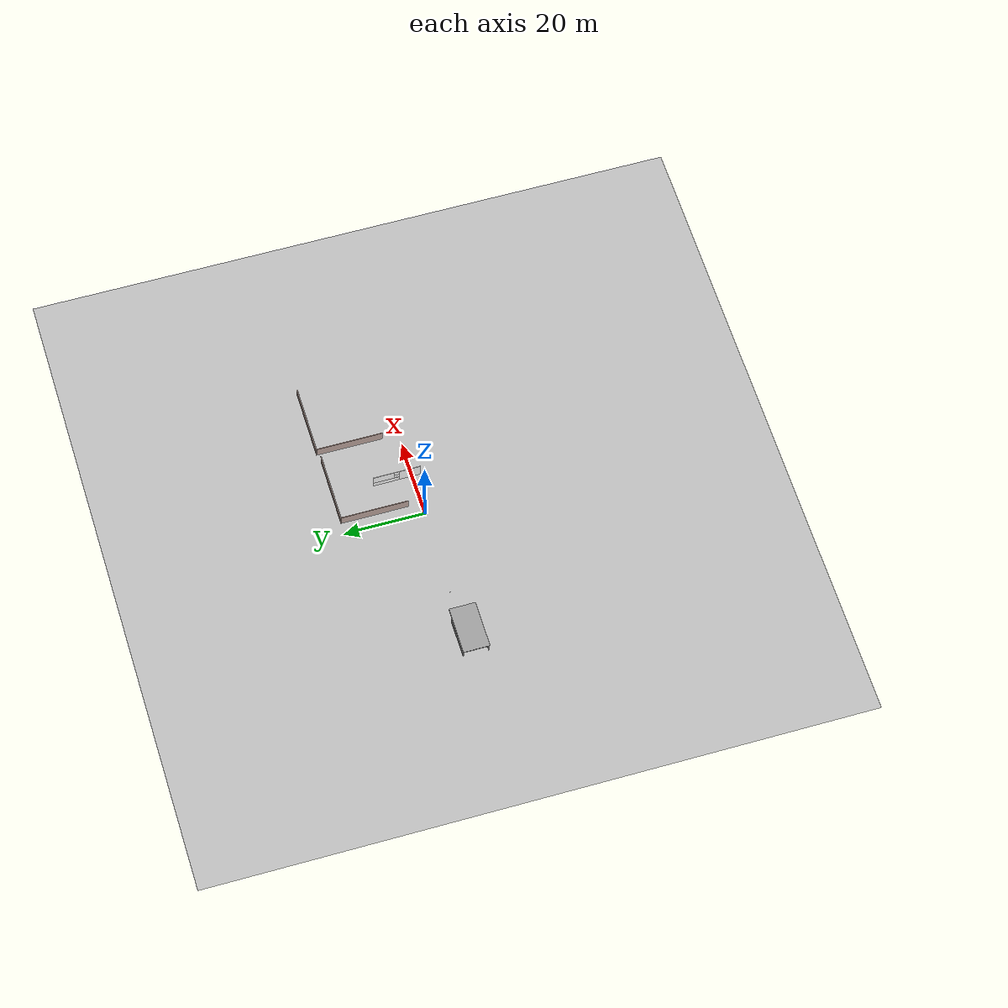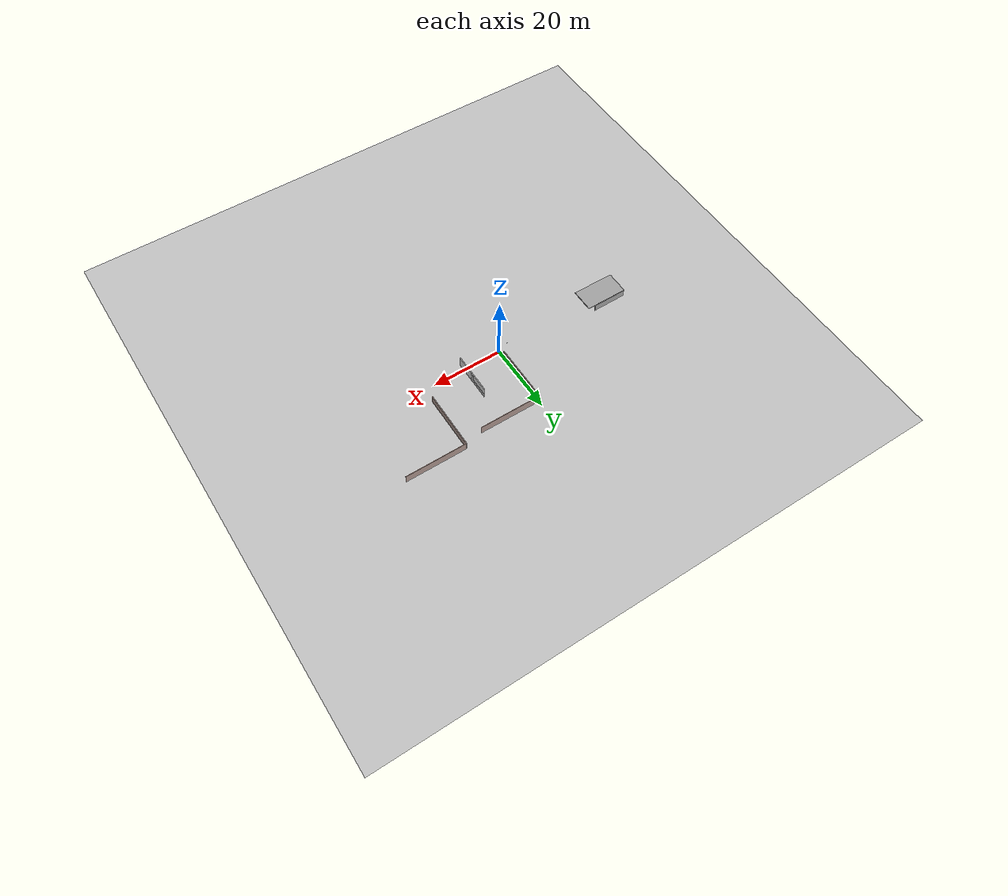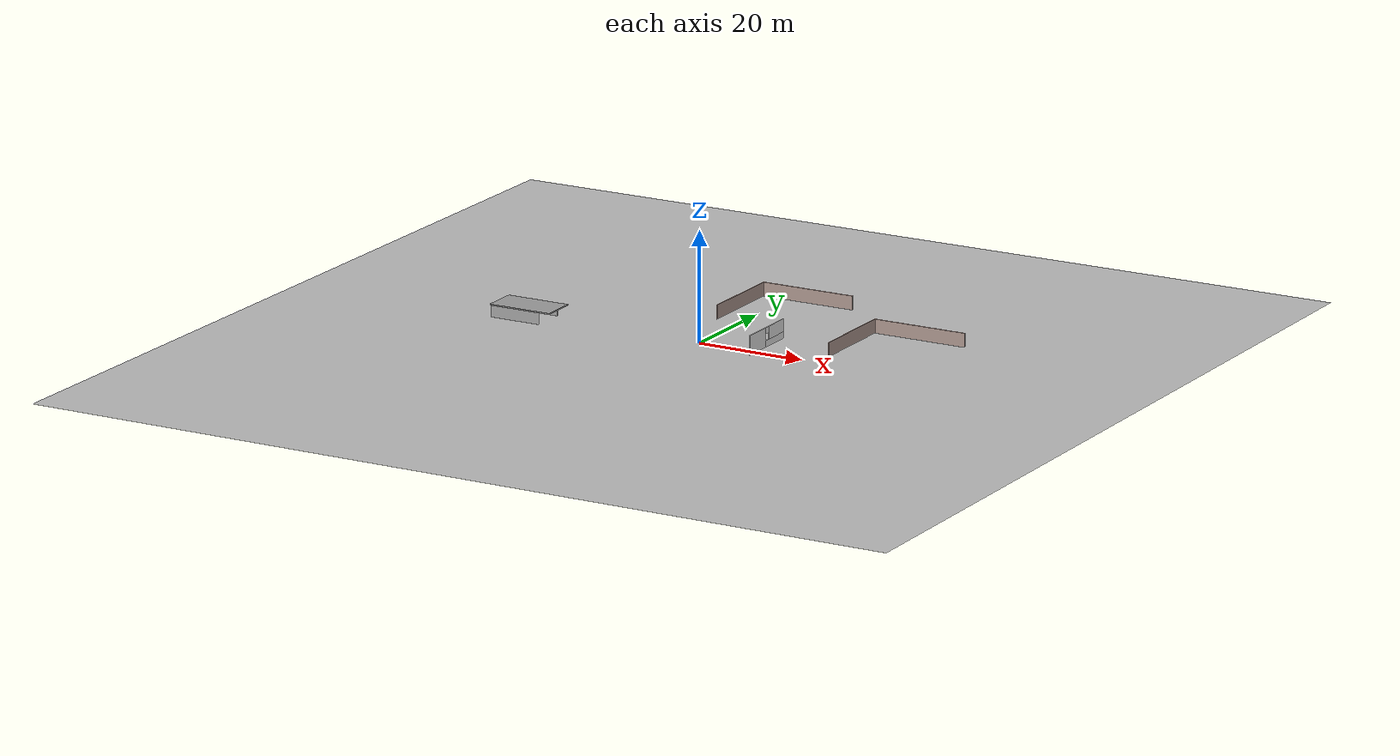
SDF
<sdf version="1.5">
 <world name="default">
  <spherical_coordinates>
   <latitude_deg>48.878922</latitude_deg>
   <longitude_deg>2.367782</longitude_deg>
  </spherical_coordinates>
  <physics type="ode">
   <real_time_update_rate>1000</real_time_update_rate>
   <max_step_size>0.001</max_step_size>
   <real_time_factor>1.0</real_time_factor>
   <max_contacts>20</max_contacts>
   <gravity>0 0 -9.81</gravity>
   <magnetic_field>0.1062e-6 20.8038e-6 -43.2881e-6</magnetic_field>
   <ode>
    <solver>
     <type>world</type>
     <min_step_size>0.0001</min_step_size>
     <iters>50</iters>
     <precon_iters>0</precon_iters>
     <sor>1.4</sor>
     <use_dynamic_moi_rescaling>1</use_dynamic_moi_rescaling>
    </solver>
    <constraints>
     <cfm>0</cfm>
     <erp>0.2</erp>
     <contact_max_correcting_vel>100.0</contact_max_correcting_vel>
     <contact_surface_layer>0.001</contact_surface_layer>
    </constraints>
   </ode>
  </physics>
  <atmosphere type="adiabatic">
   <temperature>298.15</temperature>
   <pressure>101325</pressure>
   <temperature_gradient>-0.0065</temperature_gradient>
  </atmosphere>
  <plugin name="fwman" filename="libsphinx_fwman.so">
   <spawn_point name="default"><pose>0 -8 0.2 0 0 0</pose></spawn_point>
   <spawn_point name="shelter"><pose>0 0 0.2 0 0 0</pose></spawn_point>
  </plugin>
  <plugin name="wind" filename="libsphinx_wind.so">
   <magnitude_mean>0.0</magnitude_mean>
   <direction_mean>0.0</direction_mean>
   <elevation_mean>0.0</elevation_mean>
   <magnitude_time_for_rise>10.0</magnitude_time_for_rise>
   <direction_time_for_rise>30.0</direction_time_for_rise>
   <elevation_time_for_rise>0.0</elevation_time_for_rise>
   <magnitude_expr>val*(1+0.05*sin(2*pi*time/15))</magnitude_expr>
   <direction_expr>360*time/60</direction_expr>
   <elevation_expr>0.03*noise()</elevation_expr>
  </plugin>
  <include><uri>model://grass_plane</uri></include>
  <include><uri>model://sun</uri></include>
  <model name="target_1">
   <static>false</static>
   <pose>-34.7 -0.8 0.0 0 0 0</pose>
   <include><uri>model://cricket_ball</uri></include>
  </model>
  <model name="target_2">
   <static>false</static>
   <pose>-29 -0.78 0.0 0 0 0</pose>
   <include><uri>model://cricket_ball</uri></include>
  </model>
  <model name="target_3">
   <static>false</static>
   <pose>-22 0.4 0.0 0 0 0</pose>
   <include><uri>model://cricket_ball</uri></include>
  </model>
  <model name="target_4">
   <static>false</static>
   <pose>-17.9 0.1 0.0 0 0 0</pose>
   <include><uri>model://cricket_ball</uri></include>
  </model>
  <model name="target_5">
   <static>false</static>
   <pose>-3.4 -1.4 0.0 0 0 0</pose>
   <include><uri>model://cricket_ball</uri></include>
  </model>
  <model name="target_6">
   <static>false</static>
   <pose>10.9 4 0.0 0 0 0</pose>
   <include><uri>model://cricket_ball</uri></include>
  </model>
  <model name="target_7">
   <static>false</static>
   <pose>30.9 2 0.0 0 0 0</pose>
   <include><uri>model://cricket_ball</uri></include>
  </model>
  <model name="target_8">
   <static>false</static>
   <pose>34 2 0.0 0 0 0</pose>
   <include><uri>model://cricket_ball</uri></include>
  </model>
  <model name="hallway">
   <static>true</static>
   <pose>-33 1.5 -1.0 0 0 0</pose>
   <include><uri>model://hallway</uri></include>
  </model>
  <model name="wall_1">
   <static>true</static>
   <pose>11.18 10.324 3.49 0 0 0</pose>
   <include><uri>model://wall</uri></include>
  </model>
  <model name="wall_2">
   <static>true</static>
   <pose>33 10.4 0 0 0 0</pose>
   <include><uri>model://wall</uri></include>
  </model>
  <model name="window">
   <static>true</static>
   <pose>9.3 4 0 0 0 1.57</pose>
   <include><uri>model://window_door</uri></include>
  </model>
 </world>
</sdf>

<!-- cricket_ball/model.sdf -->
<sdf version="1.5">
  <model name="cricket_ball">
    <link name="link">
      <pose>0 0 0.0375 0 0 0</pose>
      <inertial>
        <mass>0.1467</mass>
        <inertia>
          <ixx>8.251875e-05</ixx>
          <ixy>0</ixy>
          <ixz>0</ixz>
          <iyy>8.251875e-05</iyy>
          <iyz>0</iyz>
          <izz>8.251875e-05</izz>
        </inertia>
      </inertial>

      <collision name="collision">
        <geometry>
          <sphere>
            <radius>0.0375</radius>
          </sphere>
        </geometry>
        <surface>
          <contact>
            <!-- Red Pine coefficients for longitudinal axis of the wood
                 according to:
                 http://www.fpl.fs.fed.us/documnts/fplgtr/fplgtr113/ch04.pdf -->
            <poissons_ratio>0.347</poissons_ratio>
            <elastic_modulus>8.8e+09</elastic_modulus>
            <ode>
              <kp>100000</kp>
              <kd>100</kd>
              <max_vel>100.0</max_vel>
              <min_depth>0.001</min_depth>
            </ode>
          </contact>
          <friction>
            <torsional>
              <coefficient>1.0</coefficient>
              <use_patch_radius>0</use_patch_radius>
              <surface_radius>0.01</surface_radius>
            </torsional>
          </friction>
        </surface>
      </collision>

      <visual name="visual">
        <geometry>
          <sphere>
            <radius>0.0375</radius>
          </sphere>
        </geometry>
        <material><diffuse>1 1 1 1</diffuse><specular>0.1 0.1 0.1 1</specular></material>
      </visual>

      <!-- approximate rolling friction -->
      <velocity_decay>
        <linear>0.00</linear>
        <angular>0.005</angular>
      </velocity_decay>
    </link>
  </model>
</sdf>

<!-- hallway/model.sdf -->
<sdf version="1.5">
  <model name="model">
    <pose>-1.08827 -2.32025 2.24903 0 -0 0</pose>
    <link name="unit_box_2">
      <pose>0.676422 -0.058315 0.998142 0 -0 0</pose>
      <gravity>1</gravity>
      <self_collide>0</self_collide>
      <kinematic>0</kinematic>
      <visual name="unit_box_2_visual">
        <pose>0 0 0 0 -0 0</pose>
        <geometry>
          <box>
            <size>11.8887 6.43251 0.213817</size>
          </box>
        </geometry>
        <material>
          <script>
            <uri>model://hallway/materials/scripts</uri>
            <uri>model://hallway/materials/textures</uri>
            <name>Gazebo/Grey</name>
          </script>
        </material>
      </visual>
      <collision name="unit_box_2_collision">
        <geometry>
          <box>
            <size>11.8887 6.43251 0.213817</size>
          </box>
        </geometry>
        <pose>0 0 0 0 -0 0</pose>
      </collision>
    </link>
    <link name="unit_box_0_clone">
      <pose>-0.332631 -3.03844 -0.499071 0 0 -1.56509</pose>
      <gravity>1</gravity>
      <self_collide>0</self_collide>
      <kinematic>0</kinematic>
      <visual name="unit_box_0_clone_visual">
        <pose>0 0 0 0 -0 0</pose>
        <geometry>
          <box>
            <size>0.193816 9.597 2.74108</size>
          </box>
        </geometry>
        <material>
          <script>
            <uri>model://hallway/materials/scripts</uri>
            <uri>model://hallway/materials/textures</uri>
            <name>Wall/TagWall</name>
          </script>
        </material>
      </visual>
      <collision name="unit_box_0_clone_collision">
        <geometry>
          <box>
            <size>0.193816 9.597 2.74108</size>
          </box>
        </geometry>
        <pose>0 0 0 0 -0 0</pose>
      </collision>
    </link>
    <link name="unit_box_0">
      <pose>-0.343791 3.09675 -0.499071 0 0 -1.5627</pose>
      <gravity>1</gravity>
      <self_collide>0</self_collide>
      <kinematic>0</kinematic>
      <visual name="unit_box_0_visual">
        <pose>0 0 0 0 -0 0</pose>
        <geometry>
          <box>
            <size>0.193816 9.597 2.74108</size>
          </box>
        </geometry>
        <material>
          <script>
            <uri>model://hallway/materials/scripts</uri>
            <uri>model://hallway/materials/textures</uri>
            <name>Wall/TagWall</name>
          </script>
        </material>
      </visual>
      <collision name="unit_box_0_collision">
        <geometry>
          <box>
            <size>0.193816 9.597 2.74108</size>
          </box>
        </geometry>
        <pose>0 0 0 0 -0 0</pose>
      </collision>
    </link>
    <joint name="unit_box_2_JOINT_7" type="universal">
      <parent>unit_box_2</parent>
      <child>unit_box_0</child>
      <axis>
        <xyz>1 0 0</xyz>
        <use_parent_model_frame>0</use_parent_model_frame>
        <limit>
          <lower>-3.14</lower>
          <upper>3.14</upper>
        </limit>
      </axis>
      <pose>0 0 0 0 -0 0</pose>
      <axis2>
        <xyz>0 1 0</xyz>
        <use_parent_model_frame>0</use_parent_model_frame>
        <limit>
          <lower>-3.14</lower>
          <upper>3.14</upper>
        </limit>
      </axis2>
    </joint>
    <joint name="unit_box_2_JOINT_6" type="universal">
      <parent>unit_box_2</parent>
      <child>unit_box_0_clone</child>
      <axis>
        <xyz>1 0 0</xyz>
        <use_parent_model_frame>0</use_parent_model_frame>
        <limit>
          <lower>-3.14</lower>
          <upper>3.14</upper>
        </limit>
      </axis>
      <pose>0 0 0 0 -0 0</pose>
      <axis2>
        <xyz>0 1 0</xyz>
        <use_parent_model_frame>0</use_parent_model_frame>
        <limit>
          <lower>-3.14</lower>
          <upper>3.14</upper>
        </limit>
      </axis2>
    </joint>
    <joint name="unit_box_0_clone_JOINT_5" type="universal">
      <parent>unit_box_0_clone</parent>
      <child>unit_box_0</child>
      <axis>
        <xyz>1 0 0</xyz>
        <use_parent_model_frame>0</use_parent_model_frame>
        <limit>
          <lower>-3.14</lower>
          <upper>3.14</upper>
        </limit>
      </axis>
      <pose>0 0 0 0 -0 0</pose>
      <axis2>
        <xyz>0 1 0</xyz>
        <use_parent_model_frame>0</use_parent_model_frame>
        <limit>
          <lower>-3.14</lower>
          <upper>3.14</upper>
        </limit>
      </axis2>
    </joint>
    <joint name="unit_box_0_clone_JOINT_3" type="universal">
      <parent>unit_box_0_clone</parent>
      <child>unit_box_2</child>
      <axis>
        <xyz>1 0 0</xyz>
        <use_parent_model_frame>0</use_parent_model_frame>
        <limit>
          <lower>-3.14</lower>
          <upper>3.14</upper>
        </limit>
      </axis>
      <pose>0 0 0 0 -0 0</pose>
      <axis2>
        <xyz>0 1 0</xyz>
        <use_parent_model_frame>0</use_parent_model_frame>
        <limit>
          <lower>-3.14</lower>
          <upper>3.14</upper>
        </limit>
      </axis2>
    </joint>
    <joint name="unit_box_0_JOINT_2" type="universal">
      <parent>unit_box_0</parent>
      <child>unit_box_0_clone</child>
      <axis>
        <xyz>1 0 0</xyz>
        <use_parent_model_frame>0</use_parent_model_frame>
        <limit>
          <lower>-3.14</lower>
          <upper>3.14</upper>
        </limit>
      </axis>
      <pose>0 0 0 0 -0 0</pose>
      <axis2>
        <xyz>0 1 0</xyz>
        <use_parent_model_frame>0</use_parent_model_frame>
        <limit>
          <lower>-3.14</lower>
          <upper>3.14</upper>
        </limit>
      </axis2>
    </joint>
    <joint name="unit_box_0_JOINT_4" type="universal">
      <parent>unit_box_0</parent>
      <child>unit_box_2</child>
      <axis>
        <xyz>1 0 0</xyz>
        <use_parent_model_frame>0</use_parent_model_frame>
        <limit>
          <lower>-3.14</lower>
          <upper>3.14</upper>
        </limit>
      </axis>
      <pose>0 0 0 0 -0 0</pose>
      <axis2>
        <xyz>0 1 0</xyz>
        <use_parent_model_frame>0</use_parent_model_frame>
        <limit>
          <lower>-3.14</lower>
          <upper>3.14</upper>
        </limit>
      </axis2>
    </joint>
    <joint name="unit_box_2_JOINT_1" type="universal">
      <parent>unit_box_2</parent>
      <child>unit_box_0_clone</child>
      <axis>
        <xyz>1 0 0</xyz>
        <use_parent_model_frame>0</use_parent_model_frame>
        <limit>
          <lower>-3.14</lower>
          <upper>3.14</upper>
        </limit>
      </axis>
      <pose>0 0 0 0 -0 0</pose>
      <axis2>
        <xyz>0 1 0</xyz>
        <use_parent_model_frame>0</use_parent_model_frame>
        <limit>
          <lower>-3.14</lower>
          <upper>3.14</upper>
        </limit>
      </axis2>
    </joint>
    <joint name="unit_box_2_JOINT_0" type="universal">
      <parent>unit_box_2</parent>
      <child>unit_box_0</child>
      <axis>
        <xyz>1 0 0</xyz>
        <use_parent_model_frame>0</use_parent_model_frame>
        <limit>
          <lower>-3.14</lower>
          <upper>3.14</upper>
        </limit>
      </axis>
      <pose>0 0 0 0 -0 0</pose>
      <axis2>
        <xyz>0 1 0</xyz>
        <use_parent_model_frame>0</use_parent_model_frame>
        <limit>
          <lower>-3.14</lower>
          <upper>3.14</upper>
        </limit>
      </axis2>
    </joint>
    <static>1</static>
    <allow_auto_disable>1</allow_auto_disable>
  </model>
</sdf>

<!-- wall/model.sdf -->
<sdf version='1.6'>
  <model name='wall'>
    <pose frame=''>-1.26581 1.80502 0 0 -0 0</pose>
    <link name='Wall_0'>
      <collision name='Wall_0_Collision'>
        <geometry>
          <box>
            <size>16.5 0.15 2.5</size>
          </box>
        </geometry>
        <pose frame=''>0 0 1.25 0 -0 0</pose>
      </collision>
      <visual name='Wall_0_Visual'>
        <pose frame=''>0 0 1.25 0 -0 0</pose>
        <geometry>
          <box>
            <size>16.5 0.15 2.5</size>
          </box>
        </geometry>
        <material>
          <script>
            <uri>file://media/materials/scripts/gazebo.material</uri>
            <name>Gazebo/Grey</name>
          </script>
          <ambient>0.760784 0.662745 0.627451 1</ambient>
        </material>
        <meta>
          <layer>0</layer>
        </meta>
      </visual>
      <pose frame=''>-8.71419 -1.8e-05 0 0 0 -1.5708</pose>
    </link>
    <link name='Wall_2'>
      <collision name='Wall_2_Collision'>
        <geometry>
          <box>
            <size>17.5784 0.15 2.5</size>
          </box>
        </geometry>
        <pose frame=''>0 0 1.25 0 -0 0</pose>
      </collision>
      <visual name='Wall_2_Visual'>
        <pose frame=''>0 0 1.25 0 -0 0</pose>
        <geometry>
          <box>
            <size>17.5784 0.15 2.5</size>
          </box>
        </geometry>
        <material>
          <script>
            <uri>file://media/materials/scripts/gazebo.material</uri>
            <name>Gazebo/Grey</name>
          </script>
          <ambient>0.760784 0.662745 0.627451 1</ambient>
        </material>
        <meta>
          <layer>0</layer>
        </meta>
      </visual>
      <pose frame=''>0 8.17066 0 0 0 -0.000496</pose>
    </link>
    <static>1</static>
  </model>
</sdf>

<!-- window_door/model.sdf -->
<sdf version="1.5">
  <model name="window2">
    <pose>-0.12 -1.66 0 0 -0 0</pose>
    <link name="Wall_0">
      <pose>-0 0 0 0 -0 0</pose>
      <visual name="Wall_0_Visual_0">
        <pose>-3.2425 0 1.75 0 -0 0</pose>
        <geometry>
          <box>
            <size>5.265 0.15 3.5</size>
          </box>
        </geometry>
        <material>
          <script>
            <uri>model://window_door/materials/scripts</uri>
            <uri>model://window_door/materials/textures</uri>
            <name>Wall/NiceWall</name>
          </script>
          <ambient>1 1 1 1</ambient>
        </material>
      </visual>
      <collision name="Wall_0_Collision_0">
        <geometry>
          <box>
            <size>5.265 0.15 3.5</size>
          </box>
        </geometry>
        <pose>-3.2425 0 1.75 0 -0 0</pose>
      </collision>
      <visual name="Wall_0_Visual_1">
        <pose>2.6325 0 0.6 0 -0 0</pose>
        <geometry>
          <box>
            <size>6.485 0.15 1.2</size>
          </box>
        </geometry>
        <material>
          <script>
            <uri>model://window_door/materials/scripts</uri>
            <uri>model://window_door/materials/textures</uri>
            <name>Wall/NiceWall</name>
          </script>
          <ambient>1 1 1 1</ambient>
        </material>
      </visual>
      <collision name="Wall_0_Collision_1">
        <geometry>
          <box>
            <size>6.485 0.15 1.2</size>
          </box>
        </geometry>
        <pose>2.6325 0 0.6 0 -0 0</pose>
      </collision>
      <visual name="Wall_0_Visual_2">
        <pose>3.2325 0 2.35 0 -0 0</pose>
        <geometry>
          <box>
            <size>5.285 0.15 2.3</size>
          </box>
        </geometry>
        <material>
          <script>
            <uri>model://window_door/materials/scripts</uri>
            <uri>model://window_door/materials/textures</uri>
            <name>Wall/NiceWall</name>
          </script>
          <ambient>1 1 1 1</ambient>
        </material>
      </visual>
      <collision name="Wall_0_Collision_2">
        <geometry>
          <box>
            <size>5.285 0.15 2.3</size>
          </box>
        </geometry>
        <pose>3.2325 0 2.35 0 -0 0</pose>
      </collision>
      <visual name="Wall_0_Visual_3">
        <pose>-0.01 0 2.95 0 -0 0</pose>
        <geometry>
          <box>
            <size>1.2 0.15 1.1</size>
          </box>
        </geometry>
        <material>
          <script>
            <uri>model://window_door/materials/scripts</uri>
            <uri>model://window_door/materials/textures</uri>
            <name>Wall/NiceWall</name>
          </script>
          <ambient>1 1 1 1</ambient>
        </material>
      </visual>
      <collision name="Wall_0_Collision_3">
        <geometry>
          <box>
            <size>1.2 0.15 1.1</size>
          </box>
        </geometry>
        <pose>-0.01 0 2.95 0 -0 0</pose>
      </collision>
    </link>
    <static>1</static>
  </model>
</sdf>

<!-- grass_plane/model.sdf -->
<sdf version="1.4">
  <model name="grass_plane">
    <static>true</static>
    <link name="link">
      <collision name="collision">
        <geometry>
          <plane>
            <normal>0 0 1</normal>
            <size>750 750</size>
          </plane>
        </geometry>
        <surface>
          <friction>
            <ode>
              <mu>0.5</mu>
              <mu2>.5</mu2>
            </ode>
          </friction>
        </surface>
      </collision>

      <visual name="visual_0">
        <pose>2 -5 0 0 0 0</pose>

        <cast_shadows>false</cast_shadows>
        <geometry>
          <mesh>
            <uri>model://grass_plane/meshes/grass_plane.dae</uri>
            <scale>3 3 1</scale>
          </mesh>
        </geometry>
      </visual>
    </link>
  </model>
</sdf>
